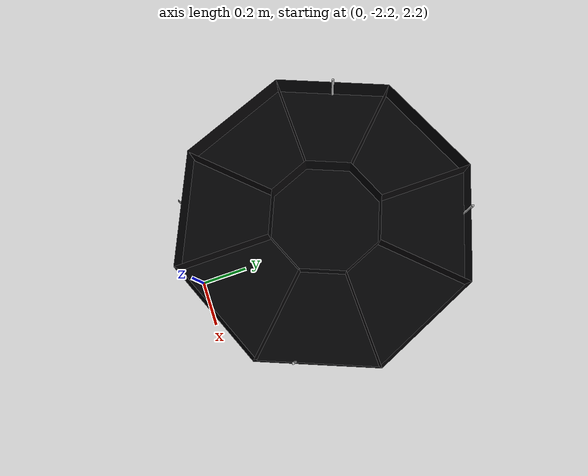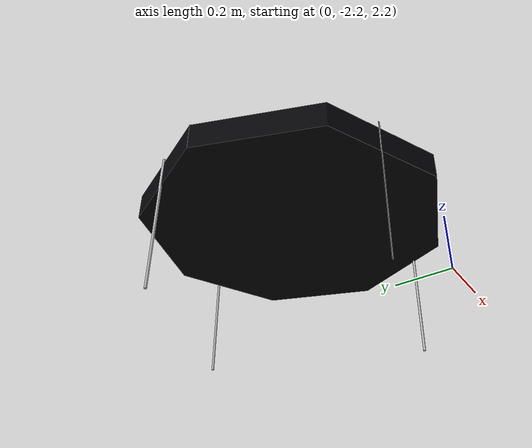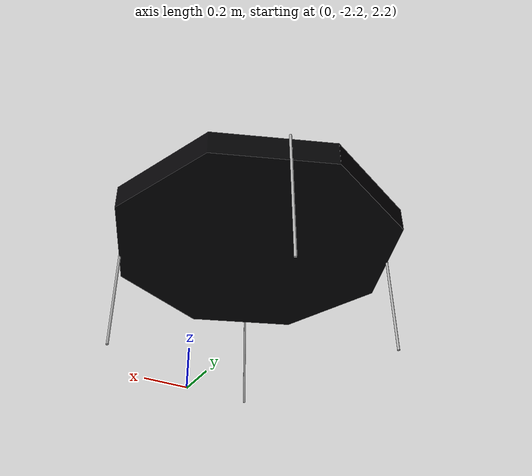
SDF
<?xml version="1.0"?>
<sdf version="1.5">
  <model name="dhd">
    <static>true</static>
    <link name="dhd">
      <collision name='dhdcol'>
        <pose>0 0 0 0 0 0</pose>
        <geometry>
          <mesh>
            <uri>file://dhd/dhd.dae</uri>
          </mesh>
        </geometry>
      </collision>
      <visual name="dhdvis">
        <pose>0 0 0 0 0 0</pose>
        <geometry>
          <mesh>
            <uri>file://dhd/dhd.dae</uri>
          </mesh>
        </geometry>
      </visual>
    </link>
  </model>
</sdf>
